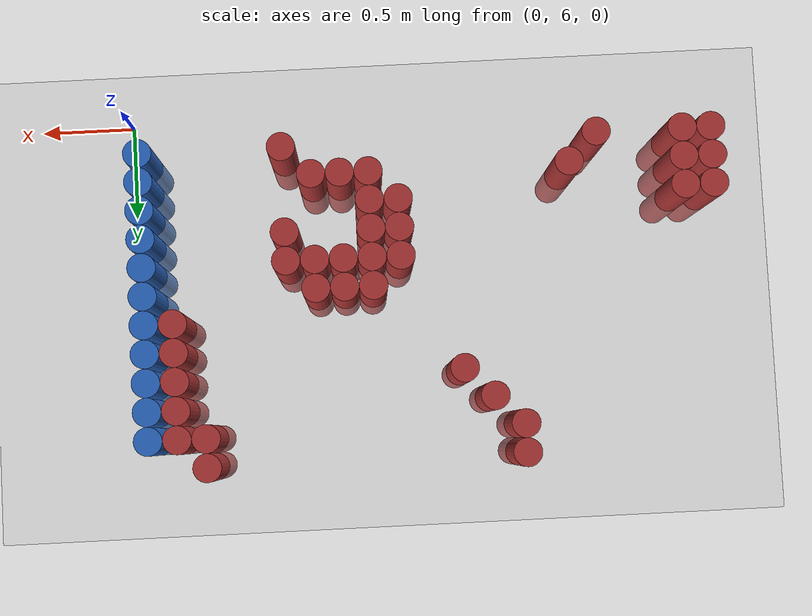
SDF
<sdf version="1.6">
 <world name="default">
  <model name="ground_plane">
   <static>1</static>
   <link name="link">
    <collision name="collision">
     <geometry><plane><normal>0 0 1</normal><size>100 100</size></plane></geometry>
     <surface><friction><ode><mu>100</mu><mu2>50</mu2></ode></friction></surface>
    </collision>
    <visual name="visual">
     <cast_shadows>0</cast_shadows>
     <geometry><plane><normal>0 0 1</normal><size>100 100</size></plane></geometry>
     <material>
      <script><uri>file://media/materials/scripts/gazebo.material</uri><name>Gazebo/Grey</name></script>
     </material>
    </visual>
   </link>
  </model>
  <model name="unit_cylinder_168">
   <static>1</static>
   <pose>-3.075000 6.225000 0.000000 0.000000 0.000000 0.000000</pose>
   <link name="link">
    <inertial>
     <mass>1</mass>
     <inertia><ixx>0.145833</ixx><ixy>0</ixy><ixz>0</ixz><iyy>0.145833</iyy><iyz>0</iyz><izz>0.125</izz></inertia>
    </inertial>
    <collision name="collision">
     <geometry><cylinder><radius>0.075000</radius><length>1</length></cylinder></geometry>
    </collision>
    <visual name="visual">
     <geometry><cylinder><radius>0.075000</radius><length>1</length></cylinder></geometry>
     <material>
      <ambient>0.648000 0.192000 0.192000 1</ambient>
      <diffuse>0.648000 0.192000 0.192000 1</diffuse>
     </material>
     <material>
      <script><name>Gazebo/Grey</name><uri>file://media/materials/scripts/gazebo.material</uri></script>
     </material>
    </visual>
   </link>
  </model>
  <model name="unit_cylinder_169">
   <static>1</static>
   <pose>-3.075000 6.375000 0.000000 0.000000 0.000000 0.000000</pose>
   <link name="link">
    <inertial>
     <mass>1</mass>
     <inertia><ixx>0.145833</ixx><ixy>0</ixy><ixz>0</ixz><iyy>0.145833</iyy><iyz>0</iyz><izz>0.125</izz></inertia>
    </inertial>
    <collision name="collision">
     <geometry><cylinder><radius>0.075000</radius><length>1</length></cylinder></geometry>
    </collision>
    <visual name="visual">
     <geometry><cylinder><radius>0.075000</radius><length>1</length></cylinder></geometry>
     <material>
      <ambient>0.648000 0.192000 0.192000 1</ambient>
      <diffuse>0.648000 0.192000 0.192000 1</diffuse>
     </material>
     <material>
      <script><name>Gazebo/Grey</name><uri>file://media/materials/scripts/gazebo.material</uri></script>
     </material>
    </visual>
   </link>
  </model>
  <model name="unit_cylinder_170">
   <static>1</static>
   <pose>-3.075000 6.525000 0.000000 0.000000 0.000000 0.000000</pose>
   <link name="link">
    <inertial>
     <mass>1</mass>
     <inertia><ixx>0.145833</ixx><ixy>0</ixy><ixz>0</ixz><iyy>0.145833</iyy><iyz>0</iyz><izz>0.125</izz></inertia>
    </inertial>
    <collision name="collision">
     <geometry><cylinder><radius>0.075000</radius><length>1</length></cylinder></geometry>
    </collision>
    <visual name="visual">
     <geometry><cylinder><radius>0.075000</radius><length>1</length></cylinder></geometry>
     <material>
      <ambient>0.648000 0.192000 0.192000 1</ambient>
      <diffuse>0.648000 0.192000 0.192000 1</diffuse>
     </material>
     <material>
      <script><name>Gazebo/Grey</name><uri>file://media/materials/scripts/gazebo.material</uri></script>
     </material>
    </visual>
   </link>
  </model>
  <model name="unit_cylinder_171">
   <static>1</static>
   <pose>-2.925000 6.225000 0.000000 0.000000 0.000000 0.000000</pose>
   <link name="link">
    <inertial>
     <mass>1</mass>
     <inertia><ixx>0.145833</ixx><ixy>0</ixy><ixz>0</ixz><iyy>0.145833</iyy><iyz>0</iyz><izz>0.125</izz></inertia>
    </inertial>
    <collision name="collision">
     <geometry><cylinder><radius>0.075000</radius><length>1</length></cylinder></geometry>
    </collision>
    <visual name="visual">
     <geometry><cylinder><radius>0.075000</radius><length>1</length></cylinder></geometry>
     <material>
      <ambient>0.648000 0.192000 0.192000 1</ambient>
      <diffuse>0.648000 0.192000 0.192000 1</diffuse>
     </material>
     <material>
      <script><name>Gazebo/Grey</name><uri>file://media/materials/scripts/gazebo.material</uri></script>
     </material>
    </visual>
   </link>
  </model>
  <model name="unit_cylinder_172">
   <static>1</static>
   <pose>-2.925000 6.375000 0.000000 0.000000 0.000000 0.000000</pose>
   <link name="link">
    <inertial>
     <mass>1</mass>
     <inertia><ixx>0.145833</ixx><ixy>0</ixy><ixz>0</ixz><iyy>0.145833</iyy><iyz>0</iyz><izz>0.125</izz></inertia>
    </inertial>
    <collision name="collision">
     <geometry><cylinder><radius>0.075000</radius><length>1</length></cylinder></geometry>
    </collision>
    <visual name="visual">
     <geometry><cylinder><radius>0.075000</radius><length>1</length></cylinder></geometry>
     <material>
      <ambient>0.648000 0.192000 0.192000 1</ambient>
      <diffuse>0.648000 0.192000 0.192000 1</diffuse>
     </material>
     <material>
      <script><name>Gazebo/Grey</name><uri>file://media/materials/scripts/gazebo.material</uri></script>
     </material>
    </visual>
   </link>
  </model>
  <model name="unit_cylinder_173">
   <static>1</static>
   <pose>-2.925000 6.525000 0.000000 0.000000 0.000000 0.000000</pose>
   <link name="link">
    <inertial>
     <mass>1</mass>
     <inertia><ixx>0.145833</ixx><ixy>0</ixy><ixz>0</ixz><iyy>0.145833</iyy><iyz>0</iyz><izz>0.125</izz></inertia>
    </inertial>
    <collision name="collision">
     <geometry><cylinder><radius>0.075000</radius><length>1</length></cylinder></geometry>
    </collision>
    <visual name="visual">
     <geometry><cylinder><radius>0.075000</radius><length>1</length></cylinder></geometry>
     <material>
      <ambient>0.648000 0.192000 0.192000 1</ambient>
      <diffuse>0.648000 0.192000 0.192000 1</diffuse>
     </material>
     <material>
      <script><name>Gazebo/Grey</name><uri>file://media/materials/scripts/gazebo.material</uri></script>
     </material>
    </visual>
   </link>
  </model>
  <model name="unit_cylinder_176">
   <static>1</static>
   <pose>-2.475000 6.225000 0.000000 0.000000 0.000000 0.000000</pose>
   <link name="link">
    <inertial>
     <mass>1</mass>
     <inertia><ixx>0.145833</ixx><ixy>0</ixy><ixz>0</ixz><iyy>0.145833</iyy><iyz>0</iyz><izz>0.125</izz></inertia>
    </inertial>
    <collision name="collision">
     <geometry><cylinder><radius>0.075000</radius><length>1</length></cylinder></geometry>
    </collision>
    <visual name="visual">
     <geometry><cylinder><radius>0.075000</radius><length>1</length></cylinder></geometry>
     <material>
      <ambient>0.648000 0.192000 0.192000 1</ambient>
      <diffuse>0.648000 0.192000 0.192000 1</diffuse>
     </material>
     <material>
      <script><name>Gazebo/Grey</name><uri>file://media/materials/scripts/gazebo.material</uri></script>
     </material>
    </visual>
   </link>
  </model>
  <model name="unit_cylinder_177">
   <static>1</static>
   <pose>-2.325000 6.375000 0.000000 0.000000 0.000000 0.000000</pose>
   <link name="link">
    <inertial>
     <mass>1</mass>
     <inertia><ixx>0.145833</ixx><ixy>0</ixy><ixz>0</ixz><iyy>0.145833</iyy><iyz>0</iyz><izz>0.125</izz></inertia>
    </inertial>
    <collision name="collision">
     <geometry><cylinder><radius>0.075000</radius><length>1</length></cylinder></geometry>
    </collision>
    <visual name="visual">
     <geometry><cylinder><radius>0.075000</radius><length>1</length></cylinder></geometry>
     <material>
      <ambient>0.648000 0.192000 0.192000 1</ambient>
      <diffuse>0.648000 0.192000 0.192000 1</diffuse>
     </material>
     <material>
      <script><name>Gazebo/Grey</name><uri>file://media/materials/scripts/gazebo.material</uri></script>
     </material>
    </visual>
   </link>
  </model>
  <model name="unit_cylinder_178">
   <static>1</static>
   <pose>-2.025000 7.725000 0.000000 0.000000 0.000000 0.000000</pose>
   <link name="link">
    <inertial>
     <mass>1</mass>
     <inertia><ixx>0.145833</ixx><ixy>0</ixy><ixz>0</ixz><iyy>0.145833</iyy><iyz>0</iyz><izz>0.125</izz></inertia>
    </inertial>
    <collision name="collision">
     <geometry><cylinder><radius>0.075000</radius><length>1</length></cylinder></geometry>
    </collision>
    <visual name="visual">
     <geometry><cylinder><radius>0.075000</radius><length>1</length></cylinder></geometry>
     <material>
      <ambient>0.648000 0.192000 0.192000 1</ambient>
      <diffuse>0.648000 0.192000 0.192000 1</diffuse>
     </material>
     <material>
      <script><name>Gazebo/Grey</name><uri>file://media/materials/scripts/gazebo.material</uri></script>
     </material>
    </visual>
   </link>
  </model>
  <model name="unit_cylinder_179">
   <static>1</static>
   <pose>-2.025000 7.875000 0.000000 0.000000 0.000000 0.000000</pose>
   <link name="link">
    <inertial>
     <mass>1</mass>
     <inertia><ixx>0.145833</ixx><ixy>0</ixy><ixz>0</ixz><iyy>0.145833</iyy><iyz>0</iyz><izz>0.125</izz></inertia>
    </inertial>
    <collision name="collision">
     <geometry><cylinder><radius>0.075000</radius><length>1</length></cylinder></geometry>
    </collision>
    <visual name="visual">
     <geometry><cylinder><radius>0.075000</radius><length>1</length></cylinder></geometry>
     <material>
      <ambient>0.648000 0.192000 0.192000 1</ambient>
      <diffuse>0.648000 0.192000 0.192000 1</diffuse>
     </material>
     <material>
      <script><name>Gazebo/Grey</name><uri>file://media/materials/scripts/gazebo.material</uri></script>
     </material>
    </visual>
   </link>
  </model>
  <model name="unit_cylinder_182">
   <static>1</static>
   <pose>-1.875000 7.575000 0.000000 0.000000 0.000000 0.000000</pose>
   <link name="link">
    <inertial>
     <mass>1</mass>
     <inertia><ixx>0.145833</ixx><ixy>0</ixy><ixz>0</ixz><iyy>0.145833</iyy><iyz>0</iyz><izz>0.125</izz></inertia>
    </inertial>
    <collision name="collision">
     <geometry><cylinder><radius>0.075000</radius><length>1</length></cylinder></geometry>
    </collision>
    <visual name="visual">
     <geometry><cylinder><radius>0.075000</radius><length>1</length></cylinder></geometry>
     <material>
      <ambient>0.648000 0.192000 0.192000 1</ambient>
      <diffuse>0.648000 0.192000 0.192000 1</diffuse>
     </material>
     <material>
      <script><name>Gazebo/Grey</name><uri>file://media/materials/scripts/gazebo.material</uri></script>
     </material>
    </visual>
   </link>
  </model>
  <model name="unit_cylinder_189">
   <static>1</static>
   <pose>-1.725000 7.425000 0.000000 0.000000 0.000000 0.000000</pose>
   <link name="link">
    <inertial>
     <mass>1</mass>
     <inertia><ixx>0.145833</ixx><ixy>0</ixy><ixz>0</ixz><iyy>0.145833</iyy><iyz>0</iyz><izz>0.125</izz></inertia>
    </inertial>
    <collision name="collision">
     <geometry><cylinder><radius>0.075000</radius><length>1</length></cylinder></geometry>
    </collision>
    <visual name="visual">
     <geometry><cylinder><radius>0.075000</radius><length>1</length></cylinder></geometry>
     <material>
      <ambient>0.648000 0.192000 0.192000 1</ambient>
      <diffuse>0.648000 0.192000 0.192000 1</diffuse>
     </material>
     <material>
      <script><name>Gazebo/Grey</name><uri>file://media/materials/scripts/gazebo.material</uri></script>
     </material>
    </visual>
   </link>
  </model>
  <model name="unit_cylinder_196">
   <static>1</static>
   <pose>-1.425000 6.525000 0.000000 0.000000 0.000000 0.000000</pose>
   <link name="link">
    <inertial>
     <mass>1</mass>
     <inertia><ixx>0.145833</ixx><ixy>0</ixy><ixz>0</ixz><iyy>0.145833</iyy><iyz>0</iyz><izz>0.125</izz></inertia>
    </inertial>
    <collision name="collision">
     <geometry><cylinder><radius>0.075000</radius><length>1</length></cylinder></geometry>
    </collision>
    <visual name="visual">
     <geometry><cylinder><radius>0.075000</radius><length>1</length></cylinder></geometry>
     <material>
      <ambient>0.648000 0.192000 0.192000 1</ambient>
      <diffuse>0.648000 0.192000 0.192000 1</diffuse>
     </material>
     <material>
      <script><name>Gazebo/Grey</name><uri>file://media/materials/scripts/gazebo.material</uri></script>
     </material>
    </visual>
   </link>
  </model>
  <model name="unit_cylinder_197">
   <static>1</static>
   <pose>-1.425000 6.675000 0.000000 0.000000 0.000000 0.000000</pose>
   <link name="link">
    <inertial>
     <mass>1</mass>
     <inertia><ixx>0.145833</ixx><ixy>0</ixy><ixz>0</ixz><iyy>0.145833</iyy><iyz>0</iyz><izz>0.125</izz></inertia>
    </inertial>
    <collision name="collision">
     <geometry><cylinder><radius>0.075000</radius><length>1</length></cylinder></geometry>
    </collision>
    <visual name="visual">
     <geometry><cylinder><radius>0.075000</radius><length>1</length></cylinder></geometry>
     <material>
      <ambient>0.648000 0.192000 0.192000 1</ambient>
      <diffuse>0.648000 0.192000 0.192000 1</diffuse>
     </material>
     <material>
      <script><name>Gazebo/Grey</name><uri>file://media/materials/scripts/gazebo.material</uri></script>
     </material>
    </visual>
   </link>
  </model>
  <model name="unit_cylinder_198">
   <static>1</static>
   <pose>-1.425000 6.825000 0.000000 0.000000 0.000000 0.000000</pose>
   <link name="link">
    <inertial>
     <mass>1</mass>
     <inertia><ixx>0.145833</ixx><ixy>0</ixy><ixz>0</ixz><iyy>0.145833</iyy><iyz>0</iyz><izz>0.125</izz></inertia>
    </inertial>
    <collision name="collision">
     <geometry><cylinder><radius>0.075000</radius><length>1</length></cylinder></geometry>
    </collision>
    <visual name="visual">
     <geometry><cylinder><radius>0.075000</radius><length>1</length></cylinder></geometry>
     <material>
      <ambient>0.648000 0.192000 0.192000 1</ambient>
      <diffuse>0.648000 0.192000 0.192000 1</diffuse>
     </material>
     <material>
      <script><name>Gazebo/Grey</name><uri>file://media/materials/scripts/gazebo.material</uri></script>
     </material>
    </visual>
   </link>
  </model>
  <model name="unit_cylinder_199">
   <static>1</static>
   <pose>-1.275000 6.375000 0.000000 0.000000 0.000000 0.000000</pose>
   <link name="link">
    <inertial>
     <mass>1</mass>
     <inertia><ixx>0.145833</ixx><ixy>0</ixy><ixz>0</ixz><iyy>0.145833</iyy><iyz>0</iyz><izz>0.125</izz></inertia>
    </inertial>
    <collision name="collision">
     <geometry><cylinder><radius>0.075000</radius><length>1</length></cylinder></geometry>
    </collision>
    <visual name="visual">
     <geometry><cylinder><radius>0.075000</radius><length>1</length></cylinder></geometry>
     <material>
      <ambient>0.648000 0.192000 0.192000 1</ambient>
      <diffuse>0.648000 0.192000 0.192000 1</diffuse>
     </material>
     <material>
      <script><name>Gazebo/Grey</name><uri>file://media/materials/scripts/gazebo.material</uri></script>
     </material>
    </visual>
   </link>
  </model>
  <model name="unit_cylinder_200">
   <static>1</static>
   <pose>-1.275000 6.525000 0.000000 0.000000 0.000000 0.000000</pose>
   <link name="link">
    <inertial>
     <mass>1</mass>
     <inertia><ixx>0.145833</ixx><ixy>0</ixy><ixz>0</ixz><iyy>0.145833</iyy><iyz>0</iyz><izz>0.125</izz></inertia>
    </inertial>
    <collision name="collision">
     <geometry><cylinder><radius>0.075000</radius><length>1</length></cylinder></geometry>
    </collision>
    <visual name="visual">
     <geometry><cylinder><radius>0.075000</radius><length>1</length></cylinder></geometry>
     <material>
      <ambient>0.648000 0.192000 0.192000 1</ambient>
      <diffuse>0.648000 0.192000 0.192000 1</diffuse>
     </material>
     <material>
      <script><name>Gazebo/Grey</name><uri>file://media/materials/scripts/gazebo.material</uri></script>
     </material>
    </visual>
   </link>
  </model>
  <model name="unit_cylinder_201">
   <static>1</static>
   <pose>-1.275000 6.675000 0.000000 0.000000 0.000000 0.000000</pose>
   <link name="link">
    <inertial>
     <mass>1</mass>
     <inertia><ixx>0.145833</ixx><ixy>0</ixy><ixz>0</ixz><iyy>0.145833</iyy><iyz>0</iyz><izz>0.125</izz></inertia>
    </inertial>
    <collision name="collision">
     <geometry><cylinder><radius>0.075000</radius><length>1</length></cylinder></geometry>
    </collision>
    <visual name="visual">
     <geometry><cylinder><radius>0.075000</radius><length>1</length></cylinder></geometry>
     <material>
      <ambient>0.648000 0.192000 0.192000 1</ambient>
      <diffuse>0.648000 0.192000 0.192000 1</diffuse>
     </material>
     <material>
      <script><name>Gazebo/Grey</name><uri>file://media/materials/scripts/gazebo.material</uri></script>
     </material>
    </visual>
   </link>
  </model>
  <model name="unit_cylinder_202">
   <static>1</static>
   <pose>-1.275000 6.825000 0.000000 0.000000 0.000000 0.000000</pose>
   <link name="link">
    <inertial>
     <mass>1</mass>
     <inertia><ixx>0.145833</ixx><ixy>0</ixy><ixz>0</ixz><iyy>0.145833</iyy><iyz>0</iyz><izz>0.125</izz></inertia>
    </inertial>
    <collision name="collision">
     <geometry><cylinder><radius>0.075000</radius><length>1</length></cylinder></geometry>
    </collision>
    <visual name="visual">
     <geometry><cylinder><radius>0.075000</radius><length>1</length></cylinder></geometry>
     <material>
      <ambient>0.648000 0.192000 0.192000 1</ambient>
      <diffuse>0.648000 0.192000 0.192000 1</diffuse>
     </material>
     <material>
      <script><name>Gazebo/Grey</name><uri>file://media/materials/scripts/gazebo.material</uri></script>
     </material>
    </visual>
   </link>
  </model>
  <model name="unit_cylinder_203">
   <static>1</static>
   <pose>-1.275000 6.975000 0.000000 0.000000 0.000000 0.000000</pose>
   <link name="link">
    <inertial>
     <mass>1</mass>
     <inertia><ixx>0.145833</ixx><ixy>0</ixy><ixz>0</ixz><iyy>0.145833</iyy><iyz>0</iyz><izz>0.125</izz></inertia>
    </inertial>
    <collision name="collision">
     <geometry><cylinder><radius>0.075000</radius><length>1</length></cylinder></geometry>
    </collision>
    <visual name="visual">
     <geometry><cylinder><radius>0.075000</radius><length>1</length></cylinder></geometry>
     <material>
      <ambient>0.648000 0.192000 0.192000 1</ambient>
      <diffuse>0.648000 0.192000 0.192000 1</diffuse>
     </material>
     <material>
      <script><name>Gazebo/Grey</name><uri>file://media/materials/scripts/gazebo.material</uri></script>
     </material>
    </visual>
   </link>
  </model>
  <model name="unit_cylinder_204">
   <static>1</static>
   <pose>-1.125000 6.375000 0.000000 0.000000 0.000000 0.000000</pose>
   <link name="link">
    <inertial>
     <mass>1</mass>
     <inertia><ixx>0.145833</ixx><ixy>0</ixy><ixz>0</ixz><iyy>0.145833</iyy><iyz>0</iyz><izz>0.125</izz></inertia>
    </inertial>
    <collision name="collision">
     <geometry><cylinder><radius>0.075000</radius><length>1</length></cylinder></geometry>
    </collision>
    <visual name="visual">
     <geometry><cylinder><radius>0.075000</radius><length>1</length></cylinder></geometry>
     <material>
      <ambient>0.648000 0.192000 0.192000 1</ambient>
      <diffuse>0.648000 0.192000 0.192000 1</diffuse>
     </material>
     <material>
      <script><name>Gazebo/Grey</name><uri>file://media/materials/scripts/gazebo.material</uri></script>
     </material>
    </visual>
   </link>
  </model>
  <model name="unit_cylinder_205">
   <static>1</static>
   <pose>-1.125000 6.825000 0.000000 0.000000 0.000000 0.000000</pose>
   <link name="link">
    <inertial>
     <mass>1</mass>
     <inertia><ixx>0.145833</ixx><ixy>0</ixy><ixz>0</ixz><iyy>0.145833</iyy><iyz>0</iyz><izz>0.125</izz></inertia>
    </inertial>
    <collision name="collision">
     <geometry><cylinder><radius>0.075000</radius><length>1</length></cylinder></geometry>
    </collision>
    <visual name="visual">
     <geometry><cylinder><radius>0.075000</radius><length>1</length></cylinder></geometry>
     <material>
      <ambient>0.648000 0.192000 0.192000 1</ambient>
      <diffuse>0.648000 0.192000 0.192000 1</diffuse>
     </material>
     <material>
      <script><name>Gazebo/Grey</name><uri>file://media/materials/scripts/gazebo.material</uri></script>
     </material>
    </visual>
   </link>
  </model>
  <model name="unit_cylinder_206">
   <static>1</static>
   <pose>-1.125000 6.975000 0.000000 0.000000 0.000000 0.000000</pose>
   <link name="link">
    <inertial>
     <mass>1</mass>
     <inertia><ixx>0.145833</ixx><ixy>0</ixy><ixz>0</ixz><iyy>0.145833</iyy><iyz>0</iyz><izz>0.125</izz></inertia>
    </inertial>
    <collision name="collision">
     <geometry><cylinder><radius>0.075000</radius><length>1</length></cylinder></geometry>
    </collision>
    <visual name="visual">
     <geometry><cylinder><radius>0.075000</radius><length>1</length></cylinder></geometry>
     <material>
      <ambient>0.648000 0.192000 0.192000 1</ambient>
      <diffuse>0.648000 0.192000 0.192000 1</diffuse>
     </material>
     <material>
      <script><name>Gazebo/Grey</name><uri>file://media/materials/scripts/gazebo.material</uri></script>
     </material>
    </visual>
   </link>
  </model>
  <model name="unit_cylinder_208">
   <static>1</static>
   <pose>-0.975000 6.375000 0.000000 0.000000 0.000000 0.000000</pose>
   <link name="link">
    <inertial>
     <mass>1</mass>
     <inertia><ixx>0.145833</ixx><ixy>0</ixy><ixz>0</ixz><iyy>0.145833</iyy><iyz>0</iyz><izz>0.125</izz></inertia>
    </inertial>
    <collision name="collision">
     <geometry><cylinder><radius>0.075000</radius><length>1</length></cylinder></geometry>
    </collision>
    <visual name="visual">
     <geometry><cylinder><radius>0.075000</radius><length>1</length></cylinder></geometry>
     <material>
      <ambient>0.648000 0.192000 0.192000 1</ambient>
      <diffuse>0.648000 0.192000 0.192000 1</diffuse>
     </material>
     <material>
      <script><name>Gazebo/Grey</name><uri>file://media/materials/scripts/gazebo.material</uri></script>
     </material>
    </visual>
   </link>
  </model>
  <model name="unit_cylinder_209">
   <static>1</static>
   <pose>-0.975000 6.825000 0.000000 0.000000 0.000000 0.000000</pose>
   <link name="link">
    <inertial>
     <mass>1</mass>
     <inertia><ixx>0.145833</ixx><ixy>0</ixy><ixz>0</ixz><iyy>0.145833</iyy><iyz>0</iyz><izz>0.125</izz></inertia>
    </inertial>
    <collision name="collision">
     <geometry><cylinder><radius>0.075000</radius><length>1</length></cylinder></geometry>
    </collision>
    <visual name="visual">
     <geometry><cylinder><radius>0.075000</radius><length>1</length></cylinder></geometry>
     <material>
      <ambient>0.648000 0.192000 0.192000 1</ambient>
      <diffuse>0.648000 0.192000 0.192000 1</diffuse>
     </material>
     <material>
      <script><name>Gazebo/Grey</name><uri>file://media/materials/scripts/gazebo.material</uri></script>
     </material>
    </visual>
   </link>
  </model>
  <model name="unit_cylinder_210">
   <static>1</static>
   <pose>-0.975000 6.975000 0.000000 0.000000 0.000000 0.000000</pose>
   <link name="link">
    <inertial>
     <mass>1</mass>
     <inertia><ixx>0.145833</ixx><ixy>0</ixy><ixz>0</ixz><iyy>0.145833</iyy><iyz>0</iyz><izz>0.125</izz></inertia>
    </inertial>
    <collision name="collision">
     <geometry><cylinder><radius>0.075000</radius><length>1</length></cylinder></geometry>
    </collision>
    <visual name="visual">
     <geometry><cylinder><radius>0.075000</radius><length>1</length></cylinder></geometry>
     <material>
      <ambient>0.648000 0.192000 0.192000 1</ambient>
      <diffuse>0.648000 0.192000 0.192000 1</diffuse>
     </material>
     <material>
      <script><name>Gazebo/Grey</name><uri>file://media/materials/scripts/gazebo.material</uri></script>
     </material>
    </visual>
   </link>
  </model>
  <model name="unit_cylinder_216">
   <static>1</static>
   <pose>-0.825000 6.225000 0.000000 0.000000 0.000000 0.000000</pose>
   <link name="link">
    <inertial>
     <mass>1</mass>
     <inertia><ixx>0.145833</ixx><ixy>0</ixy><ixz>0</ixz><iyy>0.145833</iyy><iyz>0</iyz><izz>0.125</izz></inertia>
    </inertial>
    <collision name="collision">
     <geometry><cylinder><radius>0.075000</radius><length>1</length></cylinder></geometry>
    </collision>
    <visual name="visual">
     <geometry><cylinder><radius>0.075000</radius><length>1</length></cylinder></geometry>
     <material>
      <ambient>0.648000 0.192000 0.192000 1</ambient>
      <diffuse>0.648000 0.192000 0.192000 1</diffuse>
     </material>
     <material>
      <script><name>Gazebo/Grey</name><uri>file://media/materials/scripts/gazebo.material</uri></script>
     </material>
    </visual>
   </link>
  </model>
  <model name="unit_cylinder_217">
   <static>1</static>
   <pose>-0.825000 6.675000 0.000000 0.000000 0.000000 0.000000</pose>
   <link name="link">
    <inertial>
     <mass>1</mass>
     <inertia><ixx>0.145833</ixx><ixy>0</ixy><ixz>0</ixz><iyy>0.145833</iyy><iyz>0</iyz><izz>0.125</izz></inertia>
    </inertial>
    <collision name="collision">
     <geometry><cylinder><radius>0.075000</radius><length>1</length></cylinder></geometry>
    </collision>
    <visual name="visual">
     <geometry><cylinder><radius>0.075000</radius><length>1</length></cylinder></geometry>
     <material>
      <ambient>0.648000 0.192000 0.192000 1</ambient>
      <diffuse>0.648000 0.192000 0.192000 1</diffuse>
     </material>
     <material>
      <script><name>Gazebo/Grey</name><uri>file://media/materials/scripts/gazebo.material</uri></script>
     </material>
    </visual>
   </link>
  </model>
  <model name="unit_cylinder_218">
   <static>1</static>
   <pose>-0.825000 6.825000 0.000000 0.000000 0.000000 0.000000</pose>
   <link name="link">
    <inertial>
     <mass>1</mass>
     <inertia><ixx>0.145833</ixx><ixy>0</ixy><ixz>0</ixz><iyy>0.145833</iyy><iyz>0</iyz><izz>0.125</izz></inertia>
    </inertial>
    <collision name="collision">
     <geometry><cylinder><radius>0.075000</radius><length>1</length></cylinder></geometry>
    </collision>
    <visual name="visual">
     <geometry><cylinder><radius>0.075000</radius><length>1</length></cylinder></geometry>
     <material>
      <ambient>0.648000 0.192000 0.192000 1</ambient>
      <diffuse>0.648000 0.192000 0.192000 1</diffuse>
     </material>
     <material>
      <script><name>Gazebo/Grey</name><uri>file://media/materials/scripts/gazebo.material</uri></script>
     </material>
    </visual>
   </link>
  </model>
  <model name="unit_cylinder_234">
   <static>1</static>
   <pose>-0.375000 7.725000 0.000000 0.000000 0.000000 0.000000</pose>
   <link name="link">
    <inertial>
     <mass>1</mass>
     <inertia><ixx>0.145833</ixx><ixy>0</ixy><ixz>0</ixz><iyy>0.145833</iyy><iyz>0</iyz><izz>0.125</izz></inertia>
    </inertial>
    <collision name="collision">
     <geometry><cylinder><radius>0.075000</radius><length>1</length></cylinder></geometry>
    </collision>
    <visual name="visual">
     <geometry><cylinder><radius>0.075000</radius><length>1</length></cylinder></geometry>
     <material>
      <ambient>0.648000 0.192000 0.192000 1</ambient>
      <diffuse>0.648000 0.192000 0.192000 1</diffuse>
     </material>
     <material>
      <script><name>Gazebo/Grey</name><uri>file://media/materials/scripts/gazebo.material</uri></script>
     </material>
    </visual>
   </link>
  </model>
  <model name="unit_cylinder_235">
   <static>1</static>
   <pose>-0.375000 7.875000 0.000000 0.000000 0.000000 0.000000</pose>
   <link name="link">
    <inertial>
     <mass>1</mass>
     <inertia><ixx>0.145833</ixx><ixy>0</ixy><ixz>0</ixz><iyy>0.145833</iyy><iyz>0</iyz><izz>0.125</izz></inertia>
    </inertial>
    <collision name="collision">
     <geometry><cylinder><radius>0.075000</radius><length>1</length></cylinder></geometry>
    </collision>
    <visual name="visual">
     <geometry><cylinder><radius>0.075000</radius><length>1</length></cylinder></geometry>
     <material>
      <ambient>0.648000 0.192000 0.192000 1</ambient>
      <diffuse>0.648000 0.192000 0.192000 1</diffuse>
     </material>
     <material>
      <script><name>Gazebo/Grey</name><uri>file://media/materials/scripts/gazebo.material</uri></script>
     </material>
    </visual>
   </link>
  </model>
  <model name="unit_cylinder_242">
   <static>1</static>
   <pose>-0.225000 7.125000 0.000000 0.000000 0.000000 0.000000</pose>
   <link name="link">
    <inertial>
     <mass>1</mass>
     <inertia><ixx>0.145833</ixx><ixy>0</ixy><ixz>0</ixz><iyy>0.145833</iyy><iyz>0</iyz><izz>0.125</izz></inertia>
    </inertial>
    <collision name="collision">
     <geometry><cylinder><radius>0.075000</radius><length>1</length></cylinder></geometry>
    </collision>
    <visual name="visual">
     <geometry><cylinder><radius>0.075000</radius><length>1</length></cylinder></geometry>
     <material>
      <ambient>0.648000 0.192000 0.192000 1</ambient>
      <diffuse>0.648000 0.192000 0.192000 1</diffuse>
     </material>
     <material>
      <script><name>Gazebo/Grey</name><uri>file://media/materials/scripts/gazebo.material</uri></script>
     </material>
    </visual>
   </link>
  </model>
  <model name="unit_cylinder_243">
   <static>1</static>
   <pose>-0.225000 7.275000 0.000000 0.000000 0.000000 0.000000</pose>
   <link name="link">
    <inertial>
     <mass>1</mass>
     <inertia><ixx>0.145833</ixx><ixy>0</ixy><ixz>0</ixz><iyy>0.145833</iyy><iyz>0</iyz><izz>0.125</izz></inertia>
    </inertial>
    <collision name="collision">
     <geometry><cylinder><radius>0.075000</radius><length>1</length></cylinder></geometry>
    </collision>
    <visual name="visual">
     <geometry><cylinder><radius>0.075000</radius><length>1</length></cylinder></geometry>
     <material>
      <ambient>0.648000 0.192000 0.192000 1</ambient>
      <diffuse>0.648000 0.192000 0.192000 1</diffuse>
     </material>
     <material>
      <script><name>Gazebo/Grey</name><uri>file://media/materials/scripts/gazebo.material</uri></script>
     </material>
    </visual>
   </link>
  </model>
  <model name="unit_cylinder_244">
   <static>1</static>
   <pose>-0.225000 7.425000 0.000000 0.000000 0.000000 0.000000</pose>
   <link name="link">
    <inertial>
     <mass>1</mass>
     <inertia><ixx>0.145833</ixx><ixy>0</ixy><ixz>0</ixz><iyy>0.145833</iyy><iyz>0</iyz><izz>0.125</izz></inertia>
    </inertial>
    <collision name="collision">
     <geometry><cylinder><radius>0.075000</radius><length>1</length></cylinder></geometry>
    </collision>
    <visual name="visual">
     <geometry><cylinder><radius>0.075000</radius><length>1</length></cylinder></geometry>
     <material>
      <ambient>0.648000 0.192000 0.192000 1</ambient>
      <diffuse>0.648000 0.192000 0.192000 1</diffuse>
     </material>
     <material>
      <script><name>Gazebo/Grey</name><uri>file://media/materials/scripts/gazebo.material</uri></script>
     </material>
    </visual>
   </link>
  </model>
  <model name="unit_cylinder_245">
   <static>1</static>
   <pose>-0.225000 7.575000 0.000000 0.000000 0.000000 0.000000</pose>
   <link name="link">
    <inertial>
     <mass>1</mass>
     <inertia><ixx>0.145833</ixx><ixy>0</ixy><ixz>0</ixz><iyy>0.145833</iyy><iyz>0</iyz><izz>0.125</izz></inertia>
    </inertial>
    <collision name="collision">
     <geometry><cylinder><radius>0.075000</radius><length>1</length></cylinder></geometry>
    </collision>
    <visual name="visual">
     <geometry><cylinder><radius>0.075000</radius><length>1</length></cylinder></geometry>
     <material>
      <ambient>0.648000 0.192000 0.192000 1</ambient>
      <diffuse>0.648000 0.192000 0.192000 1</diffuse>
     </material>
     <material>
      <script><name>Gazebo/Grey</name><uri>file://media/materials/scripts/gazebo.material</uri></script>
     </material>
    </visual>
   </link>
  </model>
  <model name="unit_cylinder_246">
   <static>1</static>
   <pose>-0.225000 7.725000 0.000000 0.000000 0.000000 0.000000</pose>
   <link name="link">
    <inertial>
     <mass>1</mass>
     <inertia><ixx>0.145833</ixx><ixy>0</ixy><ixz>0</ixz><iyy>0.145833</iyy><iyz>0</iyz><izz>0.125</izz></inertia>
    </inertial>
    <collision name="collision">
     <geometry><cylinder><radius>0.075000</radius><length>1</length></cylinder></geometry>
    </collision>
    <visual name="visual">
     <geometry><cylinder><radius>0.075000</radius><length>1</length></cylinder></geometry>
     <material>
      <ambient>0.648000 0.192000 0.192000 1</ambient>
      <diffuse>0.648000 0.192000 0.192000 1</diffuse>
     </material>
     <material>
      <script><name>Gazebo/Grey</name><uri>file://media/materials/scripts/gazebo.material</uri></script>
     </material>
    </visual>
   </link>
  </model>
  <model name="unit_cylinder_259">
   <static>1</static>
   <pose>-0.075000 6.225000 0.000000 0.000000 0.000000 0.000000</pose>
   <link name="link">
    <inertial>
     <mass>1</mass>
     <inertia><ixx>0.145833</ixx><ixy>0</ixy><ixz>0</ixz><iyy>0.145833</iyy><iyz>0</iyz><izz>0.125</izz></inertia>
    </inertial>
    <collision name="collision">
     <geometry><cylinder><radius>0.075000</radius><length>1</length></cylinder></geometry>
    </collision>
    <visual name="visual">
     <geometry><cylinder><radius>0.075000</radius><length>1</length></cylinder></geometry>
     <material>
      <ambient>0.152000 0.379000 0.720000 1</ambient>
      <diffuse>0.152000 0.379000 0.720000 1</diffuse>
     </material>
     <material>
      <script><name>Gazebo/Grey</name><uri>file://media/materials/scripts/gazebo.material</uri></script>
     </material>
    </visual>
   </link>
  </model>
  <model name="unit_cylinder_260">
   <static>1</static>
   <pose>-0.075000 6.375000 0.000000 0.000000 0.000000 0.000000</pose>
   <link name="link">
    <inertial>
     <mass>1</mass>
     <inertia><ixx>0.145833</ixx><ixy>0</ixy><ixz>0</ixz><iyy>0.145833</iyy><iyz>0</iyz><izz>0.125</izz></inertia>
    </inertial>
    <collision name="collision">
     <geometry><cylinder><radius>0.075000</radius><length>1</length></cylinder></geometry>
    </collision>
    <visual name="visual">
     <geometry><cylinder><radius>0.075000</radius><length>1</length></cylinder></geometry>
     <material>
      <ambient>0.152000 0.379000 0.720000 1</ambient>
      <diffuse>0.152000 0.379000 0.720000 1</diffuse>
     </material>
     <material>
      <script><name>Gazebo/Grey</name><uri>file://media/materials/scripts/gazebo.material</uri></script>
     </material>
    </visual>
   </link>
  </model>
  <model name="unit_cylinder_261">
   <static>1</static>
   <pose>-0.075000 6.525000 0.000000 0.000000 0.000000 0.000000</pose>
   <link name="link">
    <inertial>
     <mass>1</mass>
     <inertia><ixx>0.145833</ixx><ixy>0</ixy><ixz>0</ixz><iyy>0.145833</iyy><iyz>0</iyz><izz>0.125</izz></inertia>
    </inertial>
    <collision name="collision">
     <geometry><cylinder><radius>0.075000</radius><length>1</length></cylinder></geometry>
    </collision>
    <visual name="visual">
     <geometry><cylinder><radius>0.075000</radius><length>1</length></cylinder></geometry>
     <material>
      <ambient>0.152000 0.379000 0.720000 1</ambient>
      <diffuse>0.152000 0.379000 0.720000 1</diffuse>
     </material>
     <material>
      <script><name>Gazebo/Grey</name><uri>file://media/materials/scripts/gazebo.material</uri></script>
     </material>
    </visual>
   </link>
  </model>
  <model name="unit_cylinder_262">
   <static>1</static>
   <pose>-0.075000 6.675000 0.000000 0.000000 0.000000 0.000000</pose>
   <link name="link">
    <inertial>
     <mass>1</mass>
     <inertia><ixx>0.145833</ixx><ixy>0</ixy><ixz>0</ixz><iyy>0.145833</iyy><iyz>0</iyz><izz>0.125</izz></inertia>
    </inertial>
    <collision name="collision">
     <geometry><cylinder><radius>0.075000</radius><length>1</length></cylinder></geometry>
    </collision>
    <visual name="visual">
     <geometry><cylinder><radius>0.075000</radius><length>1</length></cylinder></geometry>
     <material>
      <ambient>0.152000 0.379000 0.720000 1</ambient>
      <diffuse>0.152000 0.379000 0.720000 1</diffuse>
     </material>
     <material>
      <script><name>Gazebo/Grey</name><uri>file://media/materials/scripts/gazebo.material</uri></script>
     </material>
    </visual>
   </link>
  </model>
  <model name="unit_cylinder_263">
   <static>1</static>
   <pose>-0.075000 6.825000 0.000000 0.000000 0.000000 0.000000</pose>
   <link name="link">
    <inertial>
     <mass>1</mass>
     <inertia><ixx>0.145833</ixx><ixy>0</ixy><ixz>0</ixz><iyy>0.145833</iyy><iyz>0</iyz><izz>0.125</izz></inertia>
    </inertial>
    <collision name="collision">
     <geometry><cylinder><radius>0.075000</radius><length>1</length></cylinder></geometry>
    </collision>
    <visual name="visual">
     <geometry><cylinder><radius>0.075000</radius><length>1</length></cylinder></geometry>
     <material>
      <ambient>0.152000 0.379000 0.720000 1</ambient>
      <diffuse>0.152000 0.379000 0.720000 1</diffuse>
     </material>
     <material>
      <script><name>Gazebo/Grey</name><uri>file://media/materials/scripts/gazebo.material</uri></script>
     </material>
    </visual>
   </link>
  </model>
  <model name="unit_cylinder_264">
   <static>1</static>
   <pose>-0.075000 6.975000 0.000000 0.000000 0.000000 0.000000</pose>
   <link name="link">
    <inertial>
     <mass>1</mass>
     <inertia><ixx>0.145833</ixx><ixy>0</ixy><ixz>0</ixz><iyy>0.145833</iyy><iyz>0</iyz><izz>0.125</izz></inertia>
    </inertial>
    <collision name="collision">
     <geometry><cylinder><radius>0.075000</radius><length>1</length></cylinder></geometry>
    </collision>
    <visual name="visual">
     <geometry><cylinder><radius>0.075000</radius><length>1</length></cylinder></geometry>
     <material>
      <ambient>0.152000 0.379000 0.720000 1</ambient>
      <diffuse>0.152000 0.379000 0.720000 1</diffuse>
     </material>
     <material>
      <script><name>Gazebo/Grey</name><uri>file://media/materials/scripts/gazebo.material</uri></script>
     </material>
    </visual>
   </link>
  </model>
  <model name="unit_cylinder_265">
   <static>1</static>
   <pose>-0.075000 7.125000 0.000000 0.000000 0.000000 0.000000</pose>
   <link name="link">
    <inertial>
     <mass>1</mass>
     <inertia><ixx>0.145833</ixx><ixy>0</ixy><ixz>0</ixz><iyy>0.145833</iyy><iyz>0</iyz><izz>0.125</izz></inertia>
    </inertial>
    <collision name="collision">
     <geometry><cylinder><radius>0.075000</radius><length>1</length></cylinder></geometry>
    </collision>
    <visual name="visual">
     <geometry><cylinder><radius>0.075000</radius><length>1</length></cylinder></geometry>
     <material>
      <ambient>0.152000 0.379000 0.720000 1</ambient>
      <diffuse>0.152000 0.379000 0.720000 1</diffuse>
     </material>
     <material>
      <script><name>Gazebo/Grey</name><uri>file://media/materials/scripts/gazebo.material</uri></script>
     </material>
    </visual>
   </link>
  </model>
  <model name="unit_cylinder_266">
   <static>1</static>
   <pose>-0.075000 7.275000 0.000000 0.000000 0.000000 0.000000</pose>
   <link name="link">
    <inertial>
     <mass>1</mass>
     <inertia><ixx>0.145833</ixx><ixy>0</ixy><ixz>0</ixz><iyy>0.145833</iyy><iyz>0</iyz><izz>0.125</izz></inertia>
    </inertial>
    <collision name="collision">
     <geometry><cylinder><radius>0.075000</radius><length>1</length></cylinder></geometry>
    </collision>
    <visual name="visual">
     <geometry><cylinder><radius>0.075000</radius><length>1</length></cylinder></geometry>
     <material>
      <ambient>0.152000 0.379000 0.720000 1</ambient>
      <diffuse>0.152000 0.379000 0.720000 1</diffuse>
     </material>
     <material>
      <script><name>Gazebo/Grey</name><uri>file://media/materials/scripts/gazebo.material</uri></script>
     </material>
    </visual>
   </link>
  </model>
  <model name="unit_cylinder_267">
   <static>1</static>
   <pose>-0.075000 7.425000 0.000000 0.000000 0.000000 0.000000</pose>
   <link name="link">
    <inertial>
     <mass>1</mass>
     <inertia><ixx>0.145833</ixx><ixy>0</ixy><ixz>0</ixz><iyy>0.145833</iyy><iyz>0</iyz><izz>0.125</izz></inertia>
    </inertial>
    <collision name="collision">
     <geometry><cylinder><radius>0.075000</radius><length>1</length></cylinder></geometry>
    </collision>
    <visual name="visual">
     <geometry><cylinder><radius>0.075000</radius><length>1</length></cylinder></geometry>
     <material>
      <ambient>0.152000 0.379000 0.720000 1</ambient>
      <diffuse>0.152000 0.379000 0.720000 1</diffuse>
     </material>
     <material>
      <script><name>Gazebo/Grey</name><uri>file://media/materials/scripts/gazebo.material</uri></script>
     </material>
    </visual>
   </link>
  </model>
  <model name="unit_cylinder_268">
   <static>1</static>
   <pose>-0.075000 7.575000 0.000000 0.000000 0.000000 0.000000</pose>
   <link name="link">
    <inertial>
     <mass>1</mass>
     <inertia><ixx>0.145833</ixx><ixy>0</ixy><ixz>0</ixz><iyy>0.145833</iyy><iyz>0</iyz><izz>0.125</izz></inertia>
    </inertial>
    <collision name="collision">
     <geometry><cylinder><radius>0.075000</radius><length>1</length></cylinder></geometry>
    </collision>
    <visual name="visual">
     <geometry><cylinder><radius>0.075000</radius><length>1</length></cylinder></geometry>
     <material>
      <ambient>0.152000 0.379000 0.720000 1</ambient>
      <diffuse>0.152000 0.379000 0.720000 1</diffuse>
     </material>
     <material>
      <script><name>Gazebo/Grey</name><uri>file://media/materials/scripts/gazebo.material</uri></script>
     </material>
    </visual>
   </link>
  </model>
  <model name="unit_cylinder_269">
   <static>1</static>
   <pose>-0.075000 7.725000 0.000000 0.000000 0.000000 0.000000</pose>
   <link name="link">
    <inertial>
     <mass>1</mass>
     <inertia><ixx>0.145833</ixx><ixy>0</ixy><ixz>0</ixz><iyy>0.145833</iyy><iyz>0</iyz><izz>0.125</izz></inertia>
    </inertial>
    <collision name="collision">
     <geometry><cylinder><radius>0.075000</radius><length>1</length></cylinder></geometry>
    </collision>
    <visual name="visual">
     <geometry><cylinder><radius>0.075000</radius><length>1</length></cylinder></geometry>
     <material>
      <ambient>0.152000 0.379000 0.720000 1</ambient>
      <diffuse>0.152000 0.379000 0.720000 1</diffuse>
     </material>
     <material>
      <script><name>Gazebo/Grey</name><uri>file://media/materials/scripts/gazebo.material</uri></script>
     </material>
    </visual>
   </link>
  </model>
 </world>
</sdf>
